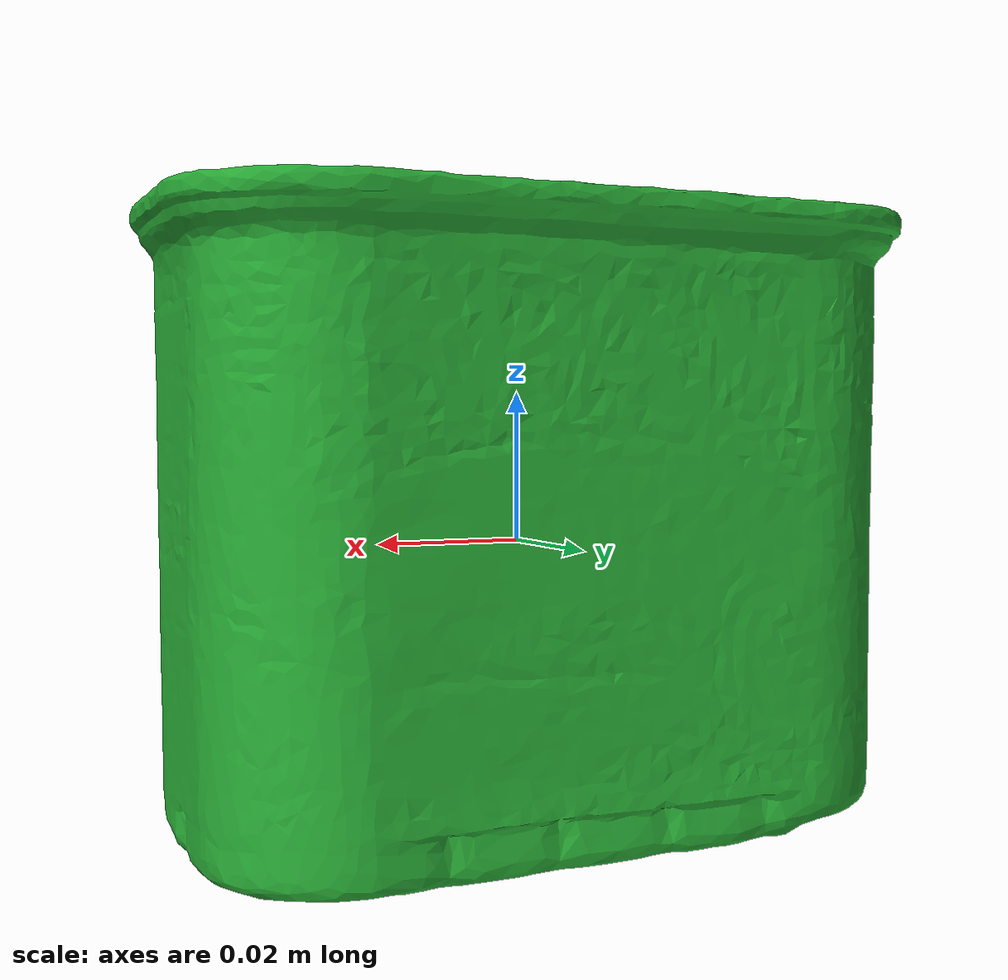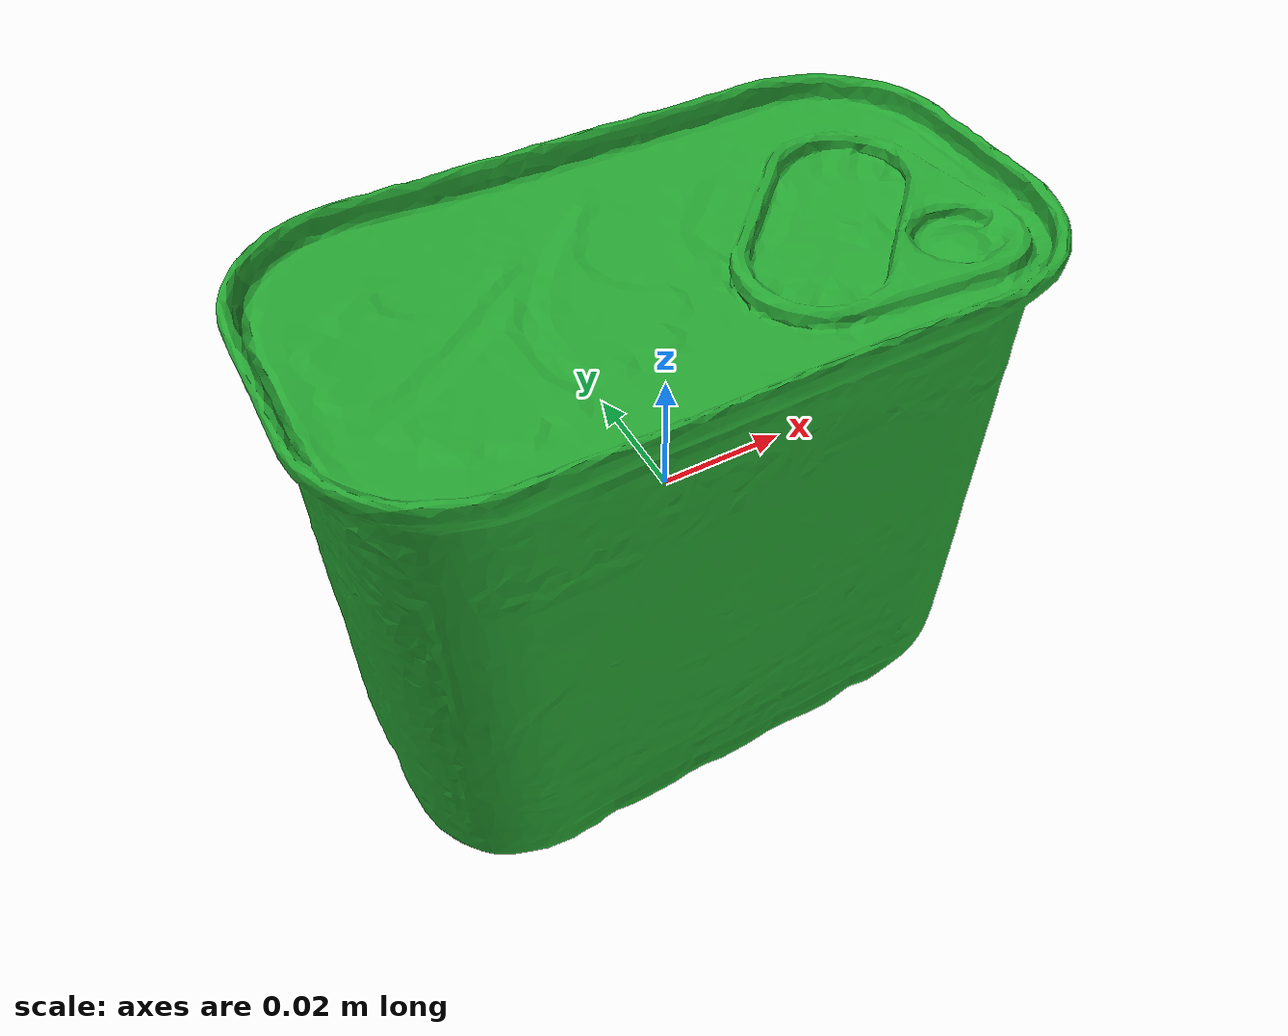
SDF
<?xml version="1.0" ?>
<sdf version='1.4'>
  <model name="demo_spam">
      <static>0</static>
      <link name='link'>
        <inertial>
          <mass>0.25</mass>
          <inertia>
            <ixx>0.00015</ixx>
            <ixy>0.000000</ixy>
            <ixz>0.000000</ixz>
            <iyy>0.00015</iyy>
            <iyz>0.000000</iyz>
            <izz>0.00015</izz>
          </inertia>
        </inertial>
        <collision name='collision'>
          <geometry>
            <box>
              <size>0.102 0.0601 0.0835</size>
            </box>
          </geometry>
          <surface>
            <friction>
              <ode>
                <mu>30.0</mu>
                <mu2>30.0</mu2>
              </ode>
            </friction>
            <contact>
              <ode>
                <kp>1000000.0</kp>
                <kd>100.0</kd>
                <max_vel>1.0</max_vel>
                <min_depth>0.002</min_depth>
              </ode>
            </contact>
          </surface>
        </collision>
        <visual name='visual'>
          <geometry>
            <mesh>
              <uri>model://demo_spam/meshes/nontextured_fixed.stl</uri>
              <scale>1 1 1</scale>
            </mesh>
          </geometry>
          <material>
            <script>
              <uri>file://media/materials/scripts/gazebo.material</uri>
              <name>Gazebo/Green</name>
            </script>
          </material>
        </visual>
        <velocity_decay>
          <linear>0.000000</linear>
          <angular>0.000000</angular>
        </velocity_decay>
        <self_collide>0</self_collide>
        <kinematic>0</kinematic>
        <gravity>1</gravity>
      </link>
  </model>
</sdf>
